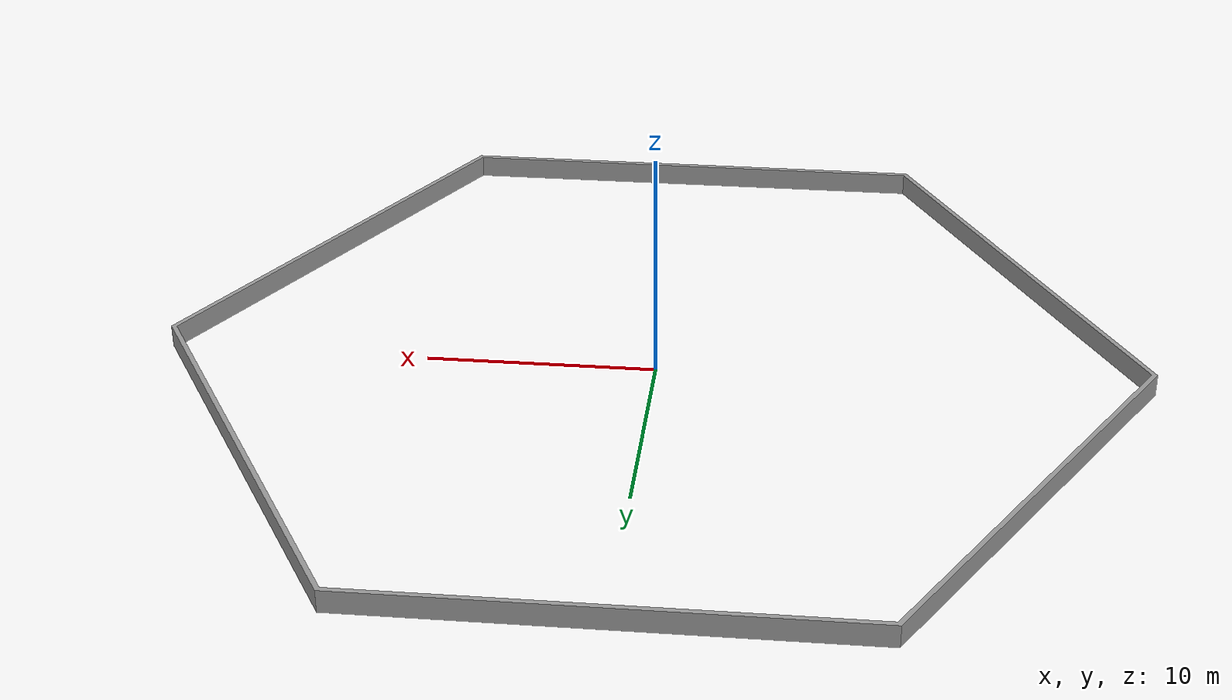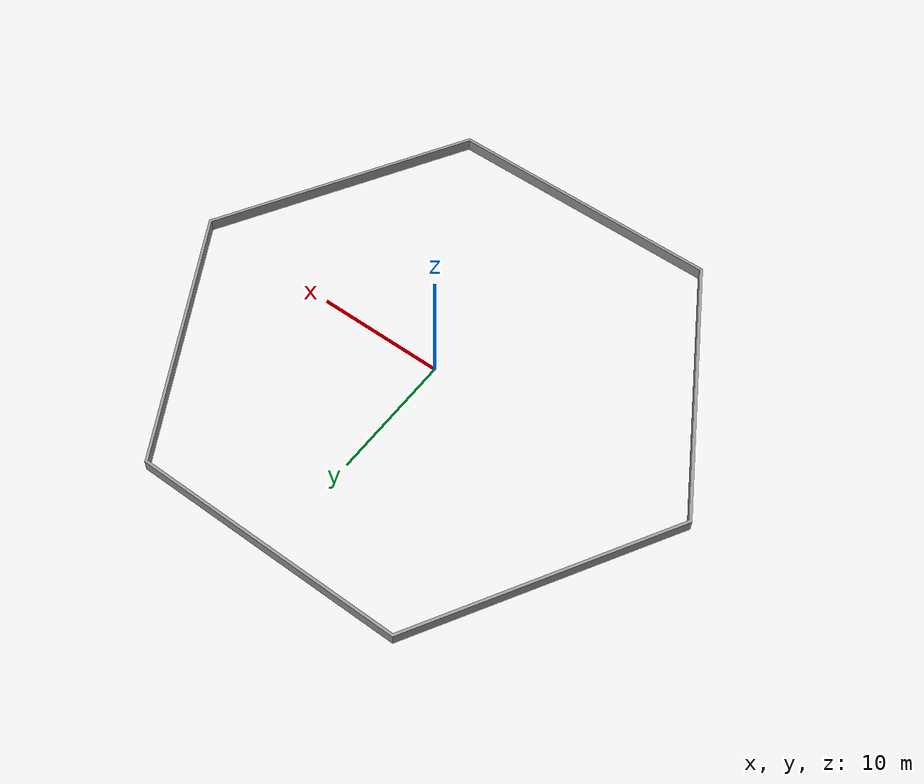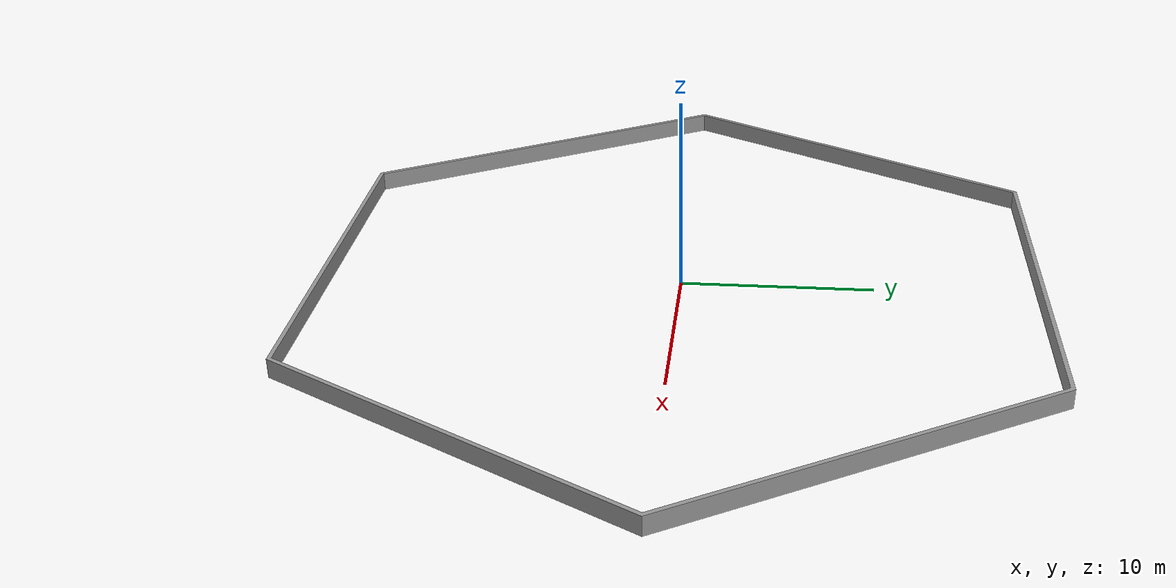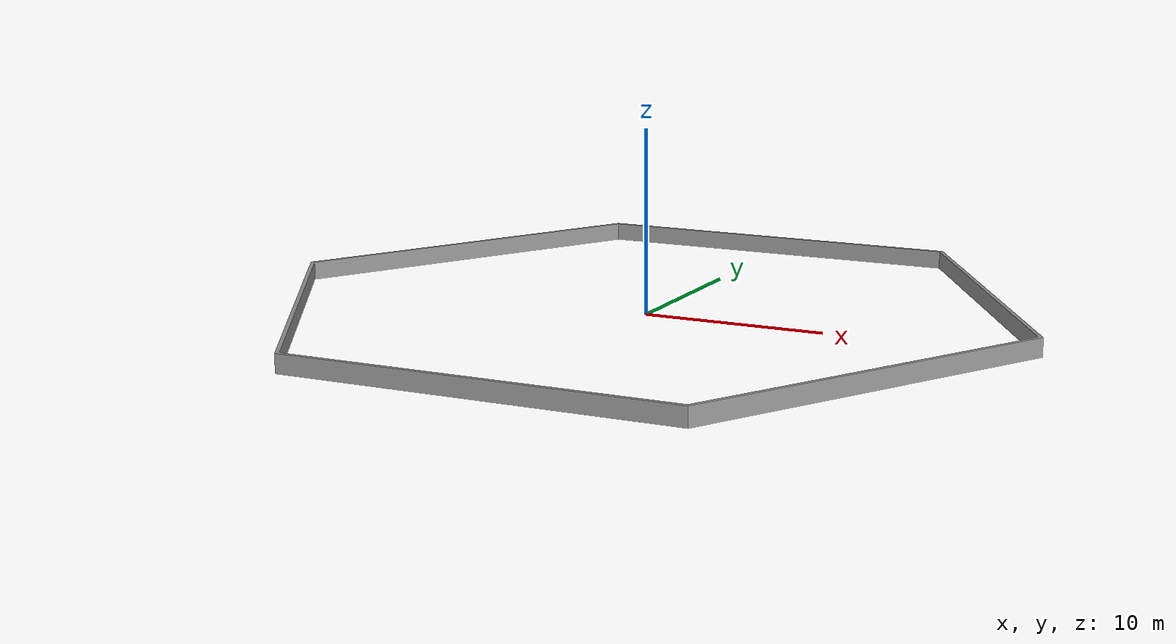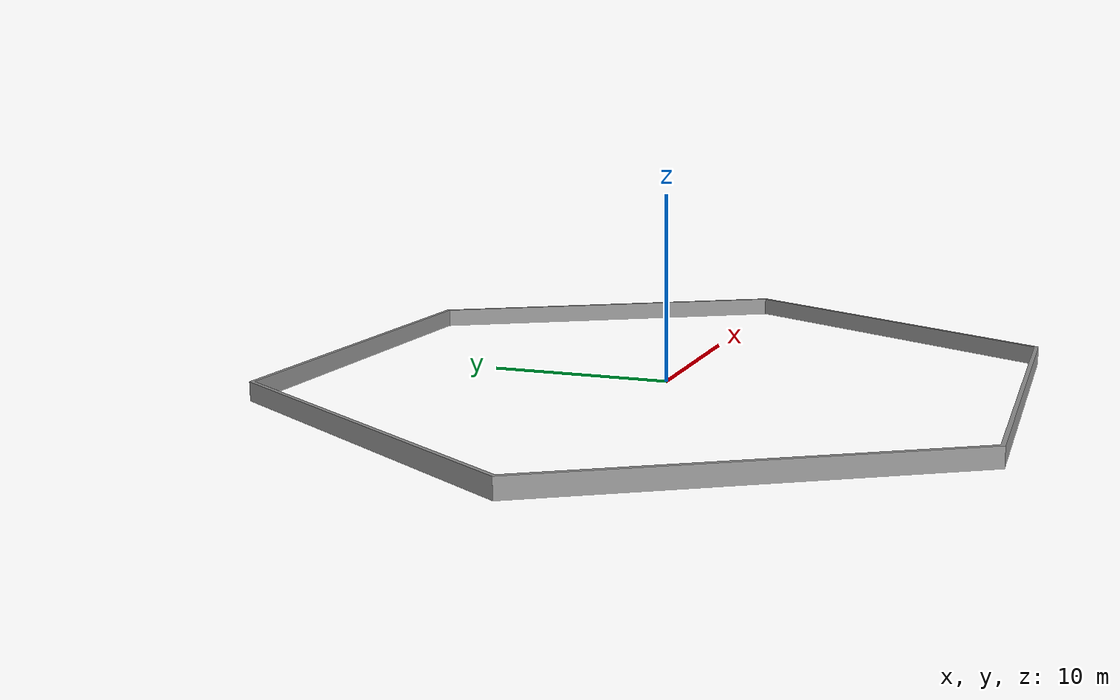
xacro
<?xml version="1.0"?>
<robot name="robot" xmlns:xacro="http://www.ros.org/wiki/xacro">
  <link name="walls_link">
    <inertial>
      <origin xyz="0 0 0" rpy="0 0 0"/>
      <mass value="1"/>
      <inertia ixx="1" ixy="0" ixz="0" iyy="1" iyz="0" izz="1"/>
    </inertial>
    <visual>
      <origin xyz="0 0 0" rpy="0 0 0"/>
      <geometry>
        <mesh filename="package://boxer_gazebo/meshes/boxer_world_walls.dae"/>
      </geometry>
      <material name="Gray" />
    </visual>
    <collision>
      <origin xyz="0 0 0" rpy="0 0 0"/>
      <geometry>
        <mesh filename="package://boxer_gazebo/meshes/boxer_world_walls.dae"/>
      </geometry>
    </collision>
  </link>
  <gazebo> <static>true</static></gazebo>
</robot>
